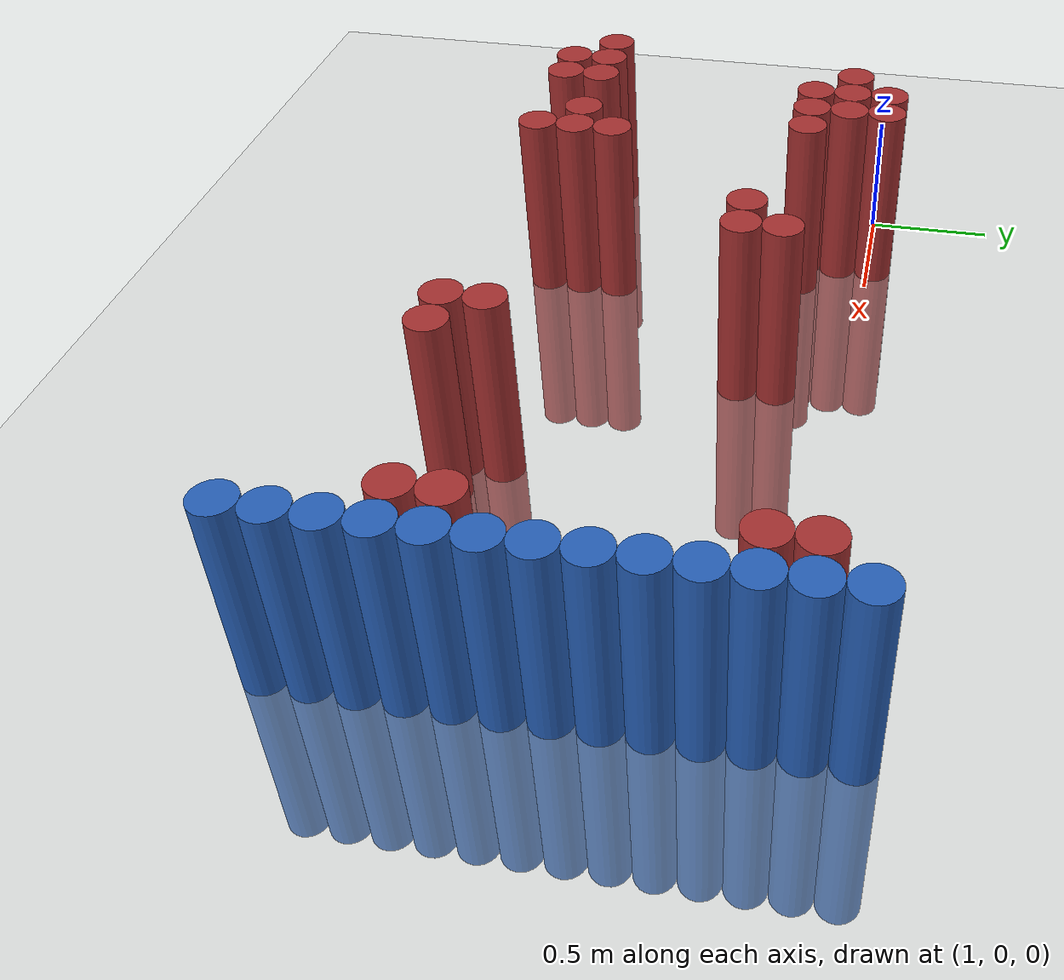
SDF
<sdf version="1.6">
 <world name="default">
  <model name="ground_plane">
   <static>1</static>
   <link name="link">
    <collision name="collision">
     <geometry><plane><normal>0 0 1</normal><size>100 100</size></plane></geometry>
     <surface><friction><ode><mu>100</mu><mu2>50</mu2></ode></friction></surface>
    </collision>
    <visual name="visual">
     <cast_shadows>0</cast_shadows>
     <geometry><plane><normal>0 0 1</normal><size>100 100</size></plane></geometry>
     <material>
      <script><uri>file://media/materials/scripts/gazebo.material</uri><name>Gazebo/Grey</name></script>
     </material>
    </visual>
   </link>
  </model>
  <model name="unit_cylinder_92">
   <static>1</static>
   <pose>3.925000 -1.625000 0.000000 0.000000 0.000000 0.000000</pose>
   <link name="link">
    <inertial>
     <mass>1</mass>
     <inertia><ixx>0.145833</ixx><ixy>0</ixy><ixz>0</ixz><iyy>0.145833</iyy><iyz>0</iyz><izz>0.125</izz></inertia>
    </inertial>
    <collision name="collision">
     <geometry><cylinder><radius>0.075000</radius><length>1.5</length></cylinder></geometry>
    </collision>
    <visual name="visual">
     <geometry><cylinder><radius>0.075000</radius><length>1.5</length></cylinder></geometry>
     <material>
      <ambient>0.152000 0.379000 0.720000 1</ambient>
      <diffuse>0.152000 0.379000 0.720000 1</diffuse>
     </material>
     <material>
      <script><name>Gazebo/Grey</name><uri>file://media/materials/scripts/gazebo.material</uri></script>
     </material>
    </visual>
   </link>
  </model>
  <model name="unit_cylinder_94">
   <static>1</static>
   <pose>3.925000 -1.475000 0.000000 0.000000 0.000000 0.000000</pose>
   <link name="link">
    <inertial>
     <mass>1</mass>
     <inertia><ixx>0.145833</ixx><ixy>0</ixy><ixz>0</ixz><iyy>0.145833</iyy><iyz>0</iyz><izz>0.125</izz></inertia>
    </inertial>
    <collision name="collision">
     <geometry><cylinder><radius>0.075000</radius><length>1.5</length></cylinder></geometry>
    </collision>
    <visual name="visual">
     <geometry><cylinder><radius>0.075000</radius><length>1.5</length></cylinder></geometry>
     <material>
      <ambient>0.152000 0.379000 0.720000 1</ambient>
      <diffuse>0.152000 0.379000 0.720000 1</diffuse>
     </material>
     <material>
      <script><name>Gazebo/Grey</name><uri>file://media/materials/scripts/gazebo.material</uri></script>
     </material>
    </visual>
   </link>
  </model>
  <model name="unit_cylinder_96">
   <static>1</static>
   <pose>3.925000 -1.325000 0.000000 0.000000 0.000000 0.000000</pose>
   <link name="link">
    <inertial>
     <mass>1</mass>
     <inertia><ixx>0.145833</ixx><ixy>0</ixy><ixz>0</ixz><iyy>0.145833</iyy><iyz>0</iyz><izz>0.125</izz></inertia>
    </inertial>
    <collision name="collision">
     <geometry><cylinder><radius>0.075000</radius><length>1.5</length></cylinder></geometry>
    </collision>
    <visual name="visual">
     <geometry><cylinder><radius>0.075000</radius><length>1.5</length></cylinder></geometry>
     <material>
      <ambient>0.152000 0.379000 0.720000 1</ambient>
      <diffuse>0.152000 0.379000 0.720000 1</diffuse>
     </material>
     <material>
      <script><name>Gazebo/Grey</name><uri>file://media/materials/scripts/gazebo.material</uri></script>
     </material>
    </visual>
   </link>
  </model>
  <model name="unit_cylinder_98">
   <static>1</static>
   <pose>3.925000 -1.175000 0.000000 0.000000 0.000000 0.000000</pose>
   <link name="link">
    <inertial>
     <mass>1</mass>
     <inertia><ixx>0.145833</ixx><ixy>0</ixy><ixz>0</ixz><iyy>0.145833</iyy><iyz>0</iyz><izz>0.125</izz></inertia>
    </inertial>
    <collision name="collision">
     <geometry><cylinder><radius>0.075000</radius><length>1.5</length></cylinder></geometry>
    </collision>
    <visual name="visual">
     <geometry><cylinder><radius>0.075000</radius><length>1.5</length></cylinder></geometry>
     <material>
      <ambient>0.152000 0.379000 0.720000 1</ambient>
      <diffuse>0.152000 0.379000 0.720000 1</diffuse>
     </material>
     <material>
      <script><name>Gazebo/Grey</name><uri>file://media/materials/scripts/gazebo.material</uri></script>
     </material>
    </visual>
   </link>
  </model>
  <model name="unit_cylinder_100">
   <static>1</static>
   <pose>3.925000 -1.025000 0.000000 0.000000 0.000000 0.000000</pose>
   <link name="link">
    <inertial>
     <mass>1</mass>
     <inertia><ixx>0.145833</ixx><ixy>0</ixy><ixz>0</ixz><iyy>0.145833</iyy><iyz>0</iyz><izz>0.125</izz></inertia>
    </inertial>
    <collision name="collision">
     <geometry><cylinder><radius>0.075000</radius><length>1.5</length></cylinder></geometry>
    </collision>
    <visual name="visual">
     <geometry><cylinder><radius>0.075000</radius><length>1.5</length></cylinder></geometry>
     <material>
      <ambient>0.152000 0.379000 0.720000 1</ambient>
      <diffuse>0.152000 0.379000 0.720000 1</diffuse>
     </material>
     <material>
      <script><name>Gazebo/Grey</name><uri>file://media/materials/scripts/gazebo.material</uri></script>
     </material>
    </visual>
   </link>
  </model>
  <model name="unit_cylinder_102">
   <static>1</static>
   <pose>3.925000 -0.875000 0.000000 0.000000 0.000000 0.000000</pose>
   <link name="link">
    <inertial>
     <mass>1</mass>
     <inertia><ixx>0.145833</ixx><ixy>0</ixy><ixz>0</ixz><iyy>0.145833</iyy><iyz>0</iyz><izz>0.125</izz></inertia>
    </inertial>
    <collision name="collision">
     <geometry><cylinder><radius>0.075000</radius><length>1.5</length></cylinder></geometry>
    </collision>
    <visual name="visual">
     <geometry><cylinder><radius>0.075000</radius><length>1.5</length></cylinder></geometry>
     <material>
      <ambient>0.152000 0.379000 0.720000 1</ambient>
      <diffuse>0.152000 0.379000 0.720000 1</diffuse>
     </material>
     <material>
      <script><name>Gazebo/Grey</name><uri>file://media/materials/scripts/gazebo.material</uri></script>
     </material>
    </visual>
   </link>
  </model>
  <model name="unit_cylinder_104">
   <static>1</static>
   <pose>3.925000 -0.725000 0.000000 0.000000 0.000000 0.000000</pose>
   <link name="link">
    <inertial>
     <mass>1</mass>
     <inertia><ixx>0.145833</ixx><ixy>0</ixy><ixz>0</ixz><iyy>0.145833</iyy><iyz>0</iyz><izz>0.125</izz></inertia>
    </inertial>
    <collision name="collision">
     <geometry><cylinder><radius>0.075000</radius><length>1.5</length></cylinder></geometry>
    </collision>
    <visual name="visual">
     <geometry><cylinder><radius>0.075000</radius><length>1.5</length></cylinder></geometry>
     <material>
      <ambient>0.152000 0.379000 0.720000 1</ambient>
      <diffuse>0.152000 0.379000 0.720000 1</diffuse>
     </material>
     <material>
      <script><name>Gazebo/Grey</name><uri>file://media/materials/scripts/gazebo.material</uri></script>
     </material>
    </visual>
   </link>
  </model>
  <model name="unit_cylinder_106">
   <static>1</static>
   <pose>3.925000 -0.575000 0.000000 0.000000 0.000000 0.000000</pose>
   <link name="link">
    <inertial>
     <mass>1</mass>
     <inertia><ixx>0.145833</ixx><ixy>0</ixy><ixz>0</ixz><iyy>0.145833</iyy><iyz>0</iyz><izz>0.125</izz></inertia>
    </inertial>
    <collision name="collision">
     <geometry><cylinder><radius>0.075000</radius><length>1.5</length></cylinder></geometry>
    </collision>
    <visual name="visual">
     <geometry><cylinder><radius>0.075000</radius><length>1.5</length></cylinder></geometry>
     <material>
      <ambient>0.152000 0.379000 0.720000 1</ambient>
      <diffuse>0.152000 0.379000 0.720000 1</diffuse>
     </material>
     <material>
      <script><name>Gazebo/Grey</name><uri>file://media/materials/scripts/gazebo.material</uri></script>
     </material>
    </visual>
   </link>
  </model>
  <model name="unit_cylinder_108">
   <static>1</static>
   <pose>3.925000 -0.425000 0.000000 0.000000 0.000000 0.000000</pose>
   <link name="link">
    <inertial>
     <mass>1</mass>
     <inertia><ixx>0.145833</ixx><ixy>0</ixy><ixz>0</ixz><iyy>0.145833</iyy><iyz>0</iyz><izz>0.125</izz></inertia>
    </inertial>
    <collision name="collision">
     <geometry><cylinder><radius>0.075000</radius><length>1.5</length></cylinder></geometry>
    </collision>
    <visual name="visual">
     <geometry><cylinder><radius>0.075000</radius><length>1.5</length></cylinder></geometry>
     <material>
      <ambient>0.152000 0.379000 0.720000 1</ambient>
      <diffuse>0.152000 0.379000 0.720000 1</diffuse>
     </material>
     <material>
      <script><name>Gazebo/Grey</name><uri>file://media/materials/scripts/gazebo.material</uri></script>
     </material>
    </visual>
   </link>
  </model>
  <model name="unit_cylinder_110">
   <static>1</static>
   <pose>3.925000 -0.275000 0.000000 0.000000 0.000000 0.000000</pose>
   <link name="link">
    <inertial>
     <mass>1</mass>
     <inertia><ixx>0.145833</ixx><ixy>0</ixy><ixz>0</ixz><iyy>0.145833</iyy><iyz>0</iyz><izz>0.125</izz></inertia>
    </inertial>
    <collision name="collision">
     <geometry><cylinder><radius>0.075000</radius><length>1.5</length></cylinder></geometry>
    </collision>
    <visual name="visual">
     <geometry><cylinder><radius>0.075000</radius><length>1.5</length></cylinder></geometry>
     <material>
      <ambient>0.152000 0.379000 0.720000 1</ambient>
      <diffuse>0.152000 0.379000 0.720000 1</diffuse>
     </material>
     <material>
      <script><name>Gazebo/Grey</name><uri>file://media/materials/scripts/gazebo.material</uri></script>
     </material>
    </visual>
   </link>
  </model>
  <model name="unit_cylinder_112">
   <static>1</static>
   <pose>3.925000 -0.125000 0.000000 0.000000 0.000000 0.000000</pose>
   <link name="link">
    <inertial>
     <mass>1</mass>
     <inertia><ixx>0.145833</ixx><ixy>0</ixy><ixz>0</ixz><iyy>0.145833</iyy><iyz>0</iyz><izz>0.125</izz></inertia>
    </inertial>
    <collision name="collision">
     <geometry><cylinder><radius>0.075000</radius><length>1.5</length></cylinder></geometry>
    </collision>
    <visual name="visual">
     <geometry><cylinder><radius>0.075000</radius><length>1.5</length></cylinder></geometry>
     <material>
      <ambient>0.152000 0.379000 0.720000 1</ambient>
      <diffuse>0.152000 0.379000 0.720000 1</diffuse>
     </material>
     <material>
      <script><name>Gazebo/Grey</name><uri>file://media/materials/scripts/gazebo.material</uri></script>
     </material>
    </visual>
   </link>
  </model>
  <model name="unit_cylinder_114">
   <static>1</static>
   <pose>3.925000 0.025000 0.000000 0.000000 0.000000 0.000000</pose>
   <link name="link">
    <inertial>
     <mass>1</mass>
     <inertia><ixx>0.145833</ixx><ixy>0</ixy><ixz>0</ixz><iyy>0.145833</iyy><iyz>0</iyz><izz>0.125</izz></inertia>
    </inertial>
    <collision name="collision">
     <geometry><cylinder><radius>0.075000</radius><length>1.5</length></cylinder></geometry>
    </collision>
    <visual name="visual">
     <geometry><cylinder><radius>0.075000</radius><length>1.5</length></cylinder></geometry>
     <material>
      <ambient>0.152000 0.379000 0.720000 1</ambient>
      <diffuse>0.152000 0.379000 0.720000 1</diffuse>
     </material>
     <material>
      <script><name>Gazebo/Grey</name><uri>file://media/materials/scripts/gazebo.material</uri></script>
     </material>
    </visual>
   </link>
  </model>
  <model name="unit_cylinder_116">
   <static>1</static>
   <pose>3.925000 0.175000 0.000000 0.000000 0.000000 0.000000</pose>
   <link name="link">
    <inertial>
     <mass>1</mass>
     <inertia><ixx>0.145833</ixx><ixy>0</ixy><ixz>0</ixz><iyy>0.145833</iyy><iyz>0</iyz><izz>0.125</izz></inertia>
    </inertial>
    <collision name="collision">
     <geometry><cylinder><radius>0.075000</radius><length>1.5</length></cylinder></geometry>
    </collision>
    <visual name="visual">
     <geometry><cylinder><radius>0.075000</radius><length>1.5</length></cylinder></geometry>
     <material>
      <ambient>0.152000 0.379000 0.720000 1</ambient>
      <diffuse>0.152000 0.379000 0.720000 1</diffuse>
     </material>
     <material>
      <script><name>Gazebo/Grey</name><uri>file://media/materials/scripts/gazebo.material</uri></script>
     </material>
    </visual>
   </link>
  </model>
  <model name="unit_cylinder_348">
   <static>1</static>
   <pose>0.925000 -1.175000 0.000000 0.000000 0.000000 0.000000</pose>
   <link name="link">
    <inertial>
     <mass>1</mass>
     <inertia><ixx>0.145833</ixx><ixy>0</ixy><ixz>0</ixz><iyy>0.145833</iyy><iyz>0</iyz><izz>0.125</izz></inertia>
    </inertial>
    <collision name="collision">
     <geometry><cylinder><radius>0.075000</radius><length>1.5</length></cylinder></geometry>
    </collision>
    <visual name="visual">
     <geometry><cylinder><radius>0.075000</radius><length>1.5</length></cylinder></geometry>
     <material>
      <ambient>0.648000 0.192000 0.192000 1</ambient>
      <diffuse>0.648000 0.192000 0.192000 1</diffuse>
     </material>
     <material>
      <script><name>Gazebo/Grey</name><uri>file://media/materials/scripts/gazebo.material</uri></script>
     </material>
    </visual>
   </link>
  </model>
  <model name="unit_cylinder_349">
   <static>1</static>
   <pose>1.075000 -1.325000 0.000000 0.000000 0.000000 0.000000</pose>
   <link name="link">
    <inertial>
     <mass>1</mass>
     <inertia><ixx>0.145833</ixx><ixy>0</ixy><ixz>0</ixz><iyy>0.145833</iyy><iyz>0</iyz><izz>0.125</izz></inertia>
    </inertial>
    <collision name="collision">
     <geometry><cylinder><radius>0.075000</radius><length>1.5</length></cylinder></geometry>
    </collision>
    <visual name="visual">
     <geometry><cylinder><radius>0.075000</radius><length>1.5</length></cylinder></geometry>
     <material>
      <ambient>0.648000 0.192000 0.192000 1</ambient>
      <diffuse>0.648000 0.192000 0.192000 1</diffuse>
     </material>
     <material>
      <script><name>Gazebo/Grey</name><uri>file://media/materials/scripts/gazebo.material</uri></script>
     </material>
    </visual>
   </link>
  </model>
  <model name="unit_cylinder_350">
   <static>1</static>
   <pose>1.075000 -1.175000 0.000000 0.000000 0.000000 0.000000</pose>
   <link name="link">
    <inertial>
     <mass>1</mass>
     <inertia><ixx>0.145833</ixx><ixy>0</ixy><ixz>0</ixz><iyy>0.145833</iyy><iyz>0</iyz><izz>0.125</izz></inertia>
    </inertial>
    <collision name="collision">
     <geometry><cylinder><radius>0.075000</radius><length>1.5</length></cylinder></geometry>
    </collision>
    <visual name="visual">
     <geometry><cylinder><radius>0.075000</radius><length>1.5</length></cylinder></geometry>
     <material>
      <ambient>0.648000 0.192000 0.192000 1</ambient>
      <diffuse>0.648000 0.192000 0.192000 1</diffuse>
     </material>
     <material>
      <script><name>Gazebo/Grey</name><uri>file://media/materials/scripts/gazebo.material</uri></script>
     </material>
    </visual>
   </link>
  </model>
  <model name="unit_cylinder_351">
   <static>1</static>
   <pose>1.075000 -0.125000 0.000000 0.000000 0.000000 0.000000</pose>
   <link name="link">
    <inertial>
     <mass>1</mass>
     <inertia><ixx>0.145833</ixx><ixy>0</ixy><ixz>0</ixz><iyy>0.145833</iyy><iyz>0</iyz><izz>0.125</izz></inertia>
    </inertial>
    <collision name="collision">
     <geometry><cylinder><radius>0.075000</radius><length>1.5</length></cylinder></geometry>
    </collision>
    <visual name="visual">
     <geometry><cylinder><radius>0.075000</radius><length>1.5</length></cylinder></geometry>
     <material>
      <ambient>0.648000 0.192000 0.192000 1</ambient>
      <diffuse>0.648000 0.192000 0.192000 1</diffuse>
     </material>
     <material>
      <script><name>Gazebo/Grey</name><uri>file://media/materials/scripts/gazebo.material</uri></script>
     </material>
    </visual>
   </link>
  </model>
  <model name="unit_cylinder_352">
   <static>1</static>
   <pose>1.225000 -1.325000 0.000000 0.000000 0.000000 0.000000</pose>
   <link name="link">
    <inertial>
     <mass>1</mass>
     <inertia><ixx>0.145833</ixx><ixy>0</ixy><ixz>0</ixz><iyy>0.145833</iyy><iyz>0</iyz><izz>0.125</izz></inertia>
    </inertial>
    <collision name="collision">
     <geometry><cylinder><radius>0.075000</radius><length>1.5</length></cylinder></geometry>
    </collision>
    <visual name="visual">
     <geometry><cylinder><radius>0.075000</radius><length>1.5</length></cylinder></geometry>
     <material>
      <ambient>0.648000 0.192000 0.192000 1</ambient>
      <diffuse>0.648000 0.192000 0.192000 1</diffuse>
     </material>
     <material>
      <script><name>Gazebo/Grey</name><uri>file://media/materials/scripts/gazebo.material</uri></script>
     </material>
    </visual>
   </link>
  </model>
  <model name="unit_cylinder_353">
   <static>1</static>
   <pose>1.225000 -1.175000 0.000000 0.000000 0.000000 0.000000</pose>
   <link name="link">
    <inertial>
     <mass>1</mass>
     <inertia><ixx>0.145833</ixx><ixy>0</ixy><ixz>0</ixz><iyy>0.145833</iyy><iyz>0</iyz><izz>0.125</izz></inertia>
    </inertial>
    <collision name="collision">
     <geometry><cylinder><radius>0.075000</radius><length>1.5</length></cylinder></geometry>
    </collision>
    <visual name="visual">
     <geometry><cylinder><radius>0.075000</radius><length>1.5</length></cylinder></geometry>
     <material>
      <ambient>0.648000 0.192000 0.192000 1</ambient>
      <diffuse>0.648000 0.192000 0.192000 1</diffuse>
     </material>
     <material>
      <script><name>Gazebo/Grey</name><uri>file://media/materials/scripts/gazebo.material</uri></script>
     </material>
    </visual>
   </link>
  </model>
  <model name="unit_cylinder_354">
   <static>1</static>
   <pose>1.225000 -0.275000 0.000000 0.000000 0.000000 0.000000</pose>
   <link name="link">
    <inertial>
     <mass>1</mass>
     <inertia><ixx>0.145833</ixx><ixy>0</ixy><ixz>0</ixz><iyy>0.145833</iyy><iyz>0</iyz><izz>0.125</izz></inertia>
    </inertial>
    <collision name="collision">
     <geometry><cylinder><radius>0.075000</radius><length>1.5</length></cylinder></geometry>
    </collision>
    <visual name="visual">
     <geometry><cylinder><radius>0.075000</radius><length>1.5</length></cylinder></geometry>
     <material>
      <ambient>0.648000 0.192000 0.192000 1</ambient>
      <diffuse>0.648000 0.192000 0.192000 1</diffuse>
     </material>
     <material>
      <script><name>Gazebo/Grey</name><uri>file://media/materials/scripts/gazebo.material</uri></script>
     </material>
    </visual>
   </link>
  </model>
  <model name="unit_cylinder_355">
   <static>1</static>
   <pose>1.225000 -0.125000 0.000000 0.000000 0.000000 0.000000</pose>
   <link name="link">
    <inertial>
     <mass>1</mass>
     <inertia><ixx>0.145833</ixx><ixy>0</ixy><ixz>0</ixz><iyy>0.145833</iyy><iyz>0</iyz><izz>0.125</izz></inertia>
    </inertial>
    <collision name="collision">
     <geometry><cylinder><radius>0.075000</radius><length>1.5</length></cylinder></geometry>
    </collision>
    <visual name="visual">
     <geometry><cylinder><radius>0.075000</radius><length>1.5</length></cylinder></geometry>
     <material>
      <ambient>0.648000 0.192000 0.192000 1</ambient>
      <diffuse>0.648000 0.192000 0.192000 1</diffuse>
     </material>
     <material>
      <script><name>Gazebo/Grey</name><uri>file://media/materials/scripts/gazebo.material</uri></script>
     </material>
    </visual>
   </link>
  </model>
  <model name="unit_cylinder_356">
   <static>1</static>
   <pose>1.225000 0.025000 0.000000 0.000000 0.000000 0.000000</pose>
   <link name="link">
    <inertial>
     <mass>1</mass>
     <inertia><ixx>0.145833</ixx><ixy>0</ixy><ixz>0</ixz><iyy>0.145833</iyy><iyz>0</iyz><izz>0.125</izz></inertia>
    </inertial>
    <collision name="collision">
     <geometry><cylinder><radius>0.075000</radius><length>1.5</length></cylinder></geometry>
    </collision>
    <visual name="visual">
     <geometry><cylinder><radius>0.075000</radius><length>1.5</length></cylinder></geometry>
     <material>
      <ambient>0.648000 0.192000 0.192000 1</ambient>
      <diffuse>0.648000 0.192000 0.192000 1</diffuse>
     </material>
     <material>
      <script><name>Gazebo/Grey</name><uri>file://media/materials/scripts/gazebo.material</uri></script>
     </material>
    </visual>
   </link>
  </model>
  <model name="unit_cylinder_357">
   <static>1</static>
   <pose>1.375000 -0.275000 0.000000 0.000000 0.000000 0.000000</pose>
   <link name="link">
    <inertial>
     <mass>1</mass>
     <inertia><ixx>0.145833</ixx><ixy>0</ixy><ixz>0</ixz><iyy>0.145833</iyy><iyz>0</iyz><izz>0.125</izz></inertia>
    </inertial>
    <collision name="collision">
     <geometry><cylinder><radius>0.075000</radius><length>1.5</length></cylinder></geometry>
    </collision>
    <visual name="visual">
     <geometry><cylinder><radius>0.075000</radius><length>1.5</length></cylinder></geometry>
     <material>
      <ambient>0.648000 0.192000 0.192000 1</ambient>
      <diffuse>0.648000 0.192000 0.192000 1</diffuse>
     </material>
     <material>
      <script><name>Gazebo/Grey</name><uri>file://media/materials/scripts/gazebo.material</uri></script>
     </material>
    </visual>
   </link>
  </model>
  <model name="unit_cylinder_358">
   <static>1</static>
   <pose>1.375000 -0.125000 0.000000 0.000000 0.000000 0.000000</pose>
   <link name="link">
    <inertial>
     <mass>1</mass>
     <inertia><ixx>0.145833</ixx><ixy>0</ixy><ixz>0</ixz><iyy>0.145833</iyy><iyz>0</iyz><izz>0.125</izz></inertia>
    </inertial>
    <collision name="collision">
     <geometry><cylinder><radius>0.075000</radius><length>1.5</length></cylinder></geometry>
    </collision>
    <visual name="visual">
     <geometry><cylinder><radius>0.075000</radius><length>1.5</length></cylinder></geometry>
     <material>
      <ambient>0.648000 0.192000 0.192000 1</ambient>
      <diffuse>0.648000 0.192000 0.192000 1</diffuse>
     </material>
     <material>
      <script><name>Gazebo/Grey</name><uri>file://media/materials/scripts/gazebo.material</uri></script>
     </material>
    </visual>
   </link>
  </model>
  <model name="unit_cylinder_359">
   <static>1</static>
   <pose>1.375000 0.025000 0.000000 0.000000 0.000000 0.000000</pose>
   <link name="link">
    <inertial>
     <mass>1</mass>
     <inertia><ixx>0.145833</ixx><ixy>0</ixy><ixz>0</ixz><iyy>0.145833</iyy><iyz>0</iyz><izz>0.125</izz></inertia>
    </inertial>
    <collision name="collision">
     <geometry><cylinder><radius>0.075000</radius><length>1.5</length></cylinder></geometry>
    </collision>
    <visual name="visual">
     <geometry><cylinder><radius>0.075000</radius><length>1.5</length></cylinder></geometry>
     <material>
      <ambient>0.648000 0.192000 0.192000 1</ambient>
      <diffuse>0.648000 0.192000 0.192000 1</diffuse>
     </material>
     <material>
      <script><name>Gazebo/Grey</name><uri>file://media/materials/scripts/gazebo.material</uri></script>
     </material>
    </visual>
   </link>
  </model>
  <model name="unit_cylinder_361">
   <static>1</static>
   <pose>1.525000 -1.175000 0.000000 0.000000 0.000000 0.000000</pose>
   <link name="link">
    <inertial>
     <mass>1</mass>
     <inertia><ixx>0.145833</ixx><ixy>0</ixy><ixz>0</ixz><iyy>0.145833</iyy><iyz>0</iyz><izz>0.125</izz></inertia>
    </inertial>
    <collision name="collision">
     <geometry><cylinder><radius>0.075000</radius><length>1.5</length></cylinder></geometry>
    </collision>
    <visual name="visual">
     <geometry><cylinder><radius>0.075000</radius><length>1.5</length></cylinder></geometry>
     <material>
      <ambient>0.648000 0.192000 0.192000 1</ambient>
      <diffuse>0.648000 0.192000 0.192000 1</diffuse>
     </material>
     <material>
      <script><name>Gazebo/Grey</name><uri>file://media/materials/scripts/gazebo.material</uri></script>
     </material>
    </visual>
   </link>
  </model>
  <model name="unit_cylinder_362">
   <static>1</static>
   <pose>1.525000 -0.275000 0.000000 0.000000 0.000000 0.000000</pose>
   <link name="link">
    <inertial>
     <mass>1</mass>
     <inertia><ixx>0.145833</ixx><ixy>0</ixy><ixz>0</ixz><iyy>0.145833</iyy><iyz>0</iyz><izz>0.125</izz></inertia>
    </inertial>
    <collision name="collision">
     <geometry><cylinder><radius>0.075000</radius><length>1.5</length></cylinder></geometry>
    </collision>
    <visual name="visual">
     <geometry><cylinder><radius>0.075000</radius><length>1.5</length></cylinder></geometry>
     <material>
      <ambient>0.648000 0.192000 0.192000 1</ambient>
      <diffuse>0.648000 0.192000 0.192000 1</diffuse>
     </material>
     <material>
      <script><name>Gazebo/Grey</name><uri>file://media/materials/scripts/gazebo.material</uri></script>
     </material>
    </visual>
   </link>
  </model>
  <model name="unit_cylinder_365">
   <static>1</static>
   <pose>1.675000 -1.325000 0.000000 0.000000 0.000000 0.000000</pose>
   <link name="link">
    <inertial>
     <mass>1</mass>
     <inertia><ixx>0.145833</ixx><ixy>0</ixy><ixz>0</ixz><iyy>0.145833</iyy><iyz>0</iyz><izz>0.125</izz></inertia>
    </inertial>
    <collision name="collision">
     <geometry><cylinder><radius>0.075000</radius><length>1.5</length></cylinder></geometry>
    </collision>
    <visual name="visual">
     <geometry><cylinder><radius>0.075000</radius><length>1.5</length></cylinder></geometry>
     <material>
      <ambient>0.648000 0.192000 0.192000 1</ambient>
      <diffuse>0.648000 0.192000 0.192000 1</diffuse>
     </material>
     <material>
      <script><name>Gazebo/Grey</name><uri>file://media/materials/scripts/gazebo.material</uri></script>
     </material>
    </visual>
   </link>
  </model>
  <model name="unit_cylinder_366">
   <static>1</static>
   <pose>1.675000 -1.175000 0.000000 0.000000 0.000000 0.000000</pose>
   <link name="link">
    <inertial>
     <mass>1</mass>
     <inertia><ixx>0.145833</ixx><ixy>0</ixy><ixz>0</ixz><iyy>0.145833</iyy><iyz>0</iyz><izz>0.125</izz></inertia>
    </inertial>
    <collision name="collision">
     <geometry><cylinder><radius>0.075000</radius><length>1.5</length></cylinder></geometry>
    </collision>
    <visual name="visual">
     <geometry><cylinder><radius>0.075000</radius><length>1.5</length></cylinder></geometry>
     <material>
      <ambient>0.648000 0.192000 0.192000 1</ambient>
      <diffuse>0.648000 0.192000 0.192000 1</diffuse>
     </material>
     <material>
      <script><name>Gazebo/Grey</name><uri>file://media/materials/scripts/gazebo.material</uri></script>
     </material>
    </visual>
   </link>
  </model>
  <model name="unit_cylinder_367">
   <static>1</static>
   <pose>1.675000 -1.025000 0.000000 0.000000 0.000000 0.000000</pose>
   <link name="link">
    <inertial>
     <mass>1</mass>
     <inertia><ixx>0.145833</ixx><ixy>0</ixy><ixz>0</ixz><iyy>0.145833</iyy><iyz>0</iyz><izz>0.125</izz></inertia>
    </inertial>
    <collision name="collision">
     <geometry><cylinder><radius>0.075000</radius><length>1.5</length></cylinder></geometry>
    </collision>
    <visual name="visual">
     <geometry><cylinder><radius>0.075000</radius><length>1.5</length></cylinder></geometry>
     <material>
      <ambient>0.648000 0.192000 0.192000 1</ambient>
      <diffuse>0.648000 0.192000 0.192000 1</diffuse>
     </material>
     <material>
      <script><name>Gazebo/Grey</name><uri>file://media/materials/scripts/gazebo.material</uri></script>
     </material>
    </visual>
   </link>
  </model>
  <model name="unit_cylinder_376">
   <static>1</static>
   <pose>2.125000 -0.425000 0.000000 0.000000 0.000000 0.000000</pose>
   <link name="link">
    <inertial>
     <mass>1</mass>
     <inertia><ixx>0.145833</ixx><ixy>0</ixy><ixz>0</ixz><iyy>0.145833</iyy><iyz>0</iyz><izz>0.125</izz></inertia>
    </inertial>
    <collision name="collision">
     <geometry><cylinder><radius>0.075000</radius><length>1.5</length></cylinder></geometry>
    </collision>
    <visual name="visual">
     <geometry><cylinder><radius>0.075000</radius><length>1.5</length></cylinder></geometry>
     <material>
      <ambient>0.648000 0.192000 0.192000 1</ambient>
      <diffuse>0.648000 0.192000 0.192000 1</diffuse>
     </material>
     <material>
      <script><name>Gazebo/Grey</name><uri>file://media/materials/scripts/gazebo.material</uri></script>
     </material>
    </visual>
   </link>
  </model>
  <model name="unit_cylinder_377">
   <static>1</static>
   <pose>2.275000 -0.425000 0.000000 0.000000 0.000000 0.000000</pose>
   <link name="link">
    <inertial>
     <mass>1</mass>
     <inertia><ixx>0.145833</ixx><ixy>0</ixy><ixz>0</ixz><iyy>0.145833</iyy><iyz>0</iyz><izz>0.125</izz></inertia>
    </inertial>
    <collision name="collision">
     <geometry><cylinder><radius>0.075000</radius><length>1.5</length></cylinder></geometry>
    </collision>
    <visual name="visual">
     <geometry><cylinder><radius>0.075000</radius><length>1.5</length></cylinder></geometry>
     <material>
      <ambient>0.648000 0.192000 0.192000 1</ambient>
      <diffuse>0.648000 0.192000 0.192000 1</diffuse>
     </material>
     <material>
      <script><name>Gazebo/Grey</name><uri>file://media/materials/scripts/gazebo.material</uri></script>
     </material>
    </visual>
   </link>
  </model>
  <model name="unit_cylinder_378">
   <static>1</static>
   <pose>2.275000 -0.275000 0.000000 0.000000 0.000000 0.000000</pose>
   <link name="link">
    <inertial>
     <mass>1</mass>
     <inertia><ixx>0.145833</ixx><ixy>0</ixy><ixz>0</ixz><iyy>0.145833</iyy><iyz>0</iyz><izz>0.125</izz></inertia>
    </inertial>
    <collision name="collision">
     <geometry><cylinder><radius>0.075000</radius><length>1.5</length></cylinder></geometry>
    </collision>
    <visual name="visual">
     <geometry><cylinder><radius>0.075000</radius><length>1.5</length></cylinder></geometry>
     <material>
      <ambient>0.648000 0.192000 0.192000 1</ambient>
      <diffuse>0.648000 0.192000 0.192000 1</diffuse>
     </material>
     <material>
      <script><name>Gazebo/Grey</name><uri>file://media/materials/scripts/gazebo.material</uri></script>
     </material>
    </visual>
   </link>
  </model>
  <model name="unit_cylinder_389">
   <static>1</static>
   <pose>2.875000 -1.325000 0.000000 0.000000 0.000000 0.000000</pose>
   <link name="link">
    <inertial>
     <mass>1</mass>
     <inertia><ixx>0.145833</ixx><ixy>0</ixy><ixz>0</ixz><iyy>0.145833</iyy><iyz>0</iyz><izz>0.125</izz></inertia>
    </inertial>
    <collision name="collision">
     <geometry><cylinder><radius>0.075000</radius><length>1.5</length></cylinder></geometry>
    </collision>
    <visual name="visual">
     <geometry><cylinder><radius>0.075000</radius><length>1.5</length></cylinder></geometry>
     <material>
      <ambient>0.648000 0.192000 0.192000 1</ambient>
      <diffuse>0.648000 0.192000 0.192000 1</diffuse>
     </material>
     <material>
      <script><name>Gazebo/Grey</name><uri>file://media/materials/scripts/gazebo.material</uri></script>
     </material>
    </visual>
   </link>
  </model>
  <model name="unit_cylinder_390">
   <static>1</static>
   <pose>2.875000 -1.175000 0.000000 0.000000 0.000000 0.000000</pose>
   <link name="link">
    <inertial>
     <mass>1</mass>
     <inertia><ixx>0.145833</ixx><ixy>0</ixy><ixz>0</ixz><iyy>0.145833</iyy><iyz>0</iyz><izz>0.125</izz></inertia>
    </inertial>
    <collision name="collision">
     <geometry><cylinder><radius>0.075000</radius><length>1.5</length></cylinder></geometry>
    </collision>
    <visual name="visual">
     <geometry><cylinder><radius>0.075000</radius><length>1.5</length></cylinder></geometry>
     <material>
      <ambient>0.648000 0.192000 0.192000 1</ambient>
      <diffuse>0.648000 0.192000 0.192000 1</diffuse>
     </material>
     <material>
      <script><name>Gazebo/Grey</name><uri>file://media/materials/scripts/gazebo.material</uri></script>
     </material>
    </visual>
   </link>
  </model>
  <model name="unit_cylinder_394">
   <static>1</static>
   <pose>3.025000 -1.325000 0.000000 0.000000 0.000000 0.000000</pose>
   <link name="link">
    <inertial>
     <mass>1</mass>
     <inertia><ixx>0.145833</ixx><ixy>0</ixy><ixz>0</ixz><iyy>0.145833</iyy><iyz>0</iyz><izz>0.125</izz></inertia>
    </inertial>
    <collision name="collision">
     <geometry><cylinder><radius>0.075000</radius><length>1.5</length></cylinder></geometry>
    </collision>
    <visual name="visual">
     <geometry><cylinder><radius>0.075000</radius><length>1.5</length></cylinder></geometry>
     <material>
      <ambient>0.648000 0.192000 0.192000 1</ambient>
      <diffuse>0.648000 0.192000 0.192000 1</diffuse>
     </material>
     <material>
      <script><name>Gazebo/Grey</name><uri>file://media/materials/scripts/gazebo.material</uri></script>
     </material>
    </visual>
   </link>
  </model>
  <model name="unit_cylinder_407">
   <static>1</static>
   <pose>3.775000 -1.175000 0.000000 0.000000 0.000000 0.000000</pose>
   <link name="link">
    <inertial>
     <mass>1</mass>
     <inertia><ixx>0.145833</ixx><ixy>0</ixy><ixz>0</ixz><iyy>0.145833</iyy><iyz>0</iyz><izz>0.125</izz></inertia>
    </inertial>
    <collision name="collision">
     <geometry><cylinder><radius>0.075000</radius><length>1.5</length></cylinder></geometry>
    </collision>
    <visual name="visual">
     <geometry><cylinder><radius>0.075000</radius><length>1.5</length></cylinder></geometry>
     <material>
      <ambient>0.648000 0.192000 0.192000 1</ambient>
      <diffuse>0.648000 0.192000 0.192000 1</diffuse>
     </material>
     <material>
      <script><name>Gazebo/Grey</name><uri>file://media/materials/scripts/gazebo.material</uri></script>
     </material>
    </visual>
   </link>
  </model>
  <model name="unit_cylinder_408">
   <static>1</static>
   <pose>3.775000 -1.025000 0.000000 0.000000 0.000000 0.000000</pose>
   <link name="link">
    <inertial>
     <mass>1</mass>
     <inertia><ixx>0.145833</ixx><ixy>0</ixy><ixz>0</ixz><iyy>0.145833</iyy><iyz>0</iyz><izz>0.125</izz></inertia>
    </inertial>
    <collision name="collision">
     <geometry><cylinder><radius>0.075000</radius><length>1.5</length></cylinder></geometry>
    </collision>
    <visual name="visual">
     <geometry><cylinder><radius>0.075000</radius><length>1.5</length></cylinder></geometry>
     <material>
      <ambient>0.648000 0.192000 0.192000 1</ambient>
      <diffuse>0.648000 0.192000 0.192000 1</diffuse>
     </material>
     <material>
      <script><name>Gazebo/Grey</name><uri>file://media/materials/scripts/gazebo.material</uri></script>
     </material>
    </visual>
   </link>
  </model>
  <model name="unit_cylinder_409">
   <static>1</static>
   <pose>3.775000 -0.125000 0.000000 0.000000 0.000000 0.000000</pose>
   <link name="link">
    <inertial>
     <mass>1</mass>
     <inertia><ixx>0.145833</ixx><ixy>0</ixy><ixz>0</ixz><iyy>0.145833</iyy><iyz>0</iyz><izz>0.125</izz></inertia>
    </inertial>
    <collision name="collision">
     <geometry><cylinder><radius>0.075000</radius><length>1.5</length></cylinder></geometry>
    </collision>
    <visual name="visual">
     <geometry><cylinder><radius>0.075000</radius><length>1.5</length></cylinder></geometry>
     <material>
      <ambient>0.648000 0.192000 0.192000 1</ambient>
      <diffuse>0.648000 0.192000 0.192000 1</diffuse>
     </material>
     <material>
      <script><name>Gazebo/Grey</name><uri>file://media/materials/scripts/gazebo.material</uri></script>
     </material>
    </visual>
   </link>
  </model>
  <model name="unit_cylinder_410">
   <static>1</static>
   <pose>3.775000 0.025000 0.000000 0.000000 0.000000 0.000000</pose>
   <link name="link">
    <inertial>
     <mass>1</mass>
     <inertia><ixx>0.145833</ixx><ixy>0</ixy><ixz>0</ixz><iyy>0.145833</iyy><iyz>0</iyz><izz>0.125</izz></inertia>
    </inertial>
    <collision name="collision">
     <geometry><cylinder><radius>0.075000</radius><length>1.5</length></cylinder></geometry>
    </collision>
    <visual name="visual">
     <geometry><cylinder><radius>0.075000</radius><length>1.5</length></cylinder></geometry>
     <material>
      <ambient>0.648000 0.192000 0.192000 1</ambient>
      <diffuse>0.648000 0.192000 0.192000 1</diffuse>
     </material>
     <material>
      <script><name>Gazebo/Grey</name><uri>file://media/materials/scripts/gazebo.material</uri></script>
     </material>
    </visual>
   </link>
  </model>
  <model name="unit_cylinder_428">
   <static>1</static>
   <pose>3.925000 -1.625000 0.000000 0.000000 0.000000 0.000000</pose>
   <link name="link">
    <inertial>
     <mass>1</mass>
     <inertia><ixx>0.145833</ixx><ixy>0</ixy><ixz>0</ixz><iyy>0.145833</iyy><iyz>0</iyz><izz>0.125</izz></inertia>
    </inertial>
    <collision name="collision">
     <geometry><cylinder><radius>0.075000</radius><length>1.5</length></cylinder></geometry>
    </collision>
    <visual name="visual">
     <geometry><cylinder><radius>0.075000</radius><length>1.5</length></cylinder></geometry>
     <material>
      <ambient>0.152000 0.379000 0.720000 1</ambient>
      <diffuse>0.152000 0.379000 0.720000 1</diffuse>
     </material>
     <material>
      <script><name>Gazebo/Grey</name><uri>file://media/materials/scripts/gazebo.material</uri></script>
     </material>
    </visual>
   </link>
  </model>
  <model name="unit_cylinder_429">
   <static>1</static>
   <pose>3.925000 -1.475000 0.000000 0.000000 0.000000 0.000000</pose>
   <link name="link">
    <inertial>
     <mass>1</mass>
     <inertia><ixx>0.145833</ixx><ixy>0</ixy><ixz>0</ixz><iyy>0.145833</iyy><iyz>0</iyz><izz>0.125</izz></inertia>
    </inertial>
    <collision name="collision">
     <geometry><cylinder><radius>0.075000</radius><length>1.5</length></cylinder></geometry>
    </collision>
    <visual name="visual">
     <geometry><cylinder><radius>0.075000</radius><length>1.5</length></cylinder></geometry>
     <material>
      <ambient>0.152000 0.379000 0.720000 1</ambient>
      <diffuse>0.152000 0.379000 0.720000 1</diffuse>
     </material>
     <material>
      <script><name>Gazebo/Grey</name><uri>file://media/materials/scripts/gazebo.material</uri></script>
     </material>
    </visual>
   </link>
  </model>
  <model name="unit_cylinder_430">
   <static>1</static>
   <pose>3.925000 -1.325000 0.000000 0.000000 0.000000 0.000000</pose>
   <link name="link">
    <inertial>
     <mass>1</mass>
     <inertia><ixx>0.145833</ixx><ixy>0</ixy><ixz>0</ixz><iyy>0.145833</iyy><iyz>0</iyz><izz>0.125</izz></inertia>
    </inertial>
    <collision name="collision">
     <geometry><cylinder><radius>0.075000</radius><length>1.5</length></cylinder></geometry>
    </collision>
    <visual name="visual">
     <geometry><cylinder><radius>0.075000</radius><length>1.5</length></cylinder></geometry>
     <material>
      <ambient>0.152000 0.379000 0.720000 1</ambient>
      <diffuse>0.152000 0.379000 0.720000 1</diffuse>
     </material>
     <material>
      <script><name>Gazebo/Grey</name><uri>file://media/materials/scripts/gazebo.material</uri></script>
     </material>
    </visual>
   </link>
  </model>
  <model name="unit_cylinder_431">
   <static>1</static>
   <pose>3.925000 -1.175000 0.000000 0.000000 0.000000 0.000000</pose>
   <link name="link">
    <inertial>
     <mass>1</mass>
     <inertia><ixx>0.145833</ixx><ixy>0</ixy><ixz>0</ixz><iyy>0.145833</iyy><iyz>0</iyz><izz>0.125</izz></inertia>
    </inertial>
    <collision name="collision">
     <geometry><cylinder><radius>0.075000</radius><length>1.5</length></cylinder></geometry>
    </collision>
    <visual name="visual">
     <geometry><cylinder><radius>0.075000</radius><length>1.5</length></cylinder></geometry>
     <material>
      <ambient>0.152000 0.379000 0.720000 1</ambient>
      <diffuse>0.152000 0.379000 0.720000 1</diffuse>
     </material>
     <material>
      <script><name>Gazebo/Grey</name><uri>file://media/materials/scripts/gazebo.material</uri></script>
     </material>
    </visual>
   </link>
  </model>
  <model name="unit_cylinder_432">
   <static>1</static>
   <pose>3.925000 -1.025000 0.000000 0.000000 0.000000 0.000000</pose>
   <link name="link">
    <inertial>
     <mass>1</mass>
     <inertia><ixx>0.145833</ixx><ixy>0</ixy><ixz>0</ixz><iyy>0.145833</iyy><iyz>0</iyz><izz>0.125</izz></inertia>
    </inertial>
    <collision name="collision">
     <geometry><cylinder><radius>0.075000</radius><length>1.5</length></cylinder></geometry>
    </collision>
    <visual name="visual">
     <geometry><cylinder><radius>0.075000</radius><length>1.5</length></cylinder></geometry>
     <material>
      <ambient>0.152000 0.379000 0.720000 1</ambient>
      <diffuse>0.152000 0.379000 0.720000 1</diffuse>
     </material>
     <material>
      <script><name>Gazebo/Grey</name><uri>file://media/materials/scripts/gazebo.material</uri></script>
     </material>
    </visual>
   </link>
  </model>
  <model name="unit_cylinder_433">
   <static>1</static>
   <pose>3.925000 -0.875000 0.000000 0.000000 0.000000 0.000000</pose>
   <link name="link">
    <inertial>
     <mass>1</mass>
     <inertia><ixx>0.145833</ixx><ixy>0</ixy><ixz>0</ixz><iyy>0.145833</iyy><iyz>0</iyz><izz>0.125</izz></inertia>
    </inertial>
    <collision name="collision">
     <geometry><cylinder><radius>0.075000</radius><length>1.5</length></cylinder></geometry>
    </collision>
    <visual name="visual">
     <geometry><cylinder><radius>0.075000</radius><length>1.5</length></cylinder></geometry>
     <material>
      <ambient>0.152000 0.379000 0.720000 1</ambient>
      <diffuse>0.152000 0.379000 0.720000 1</diffuse>
     </material>
     <material>
      <script><name>Gazebo/Grey</name><uri>file://media/materials/scripts/gazebo.material</uri></script>
     </material>
    </visual>
   </link>
  </model>
  <model name="unit_cylinder_434">
   <static>1</static>
   <pose>3.925000 -0.725000 0.000000 0.000000 0.000000 0.000000</pose>
   <link name="link">
    <inertial>
     <mass>1</mass>
     <inertia><ixx>0.145833</ixx><ixy>0</ixy><ixz>0</ixz><iyy>0.145833</iyy><iyz>0</iyz><izz>0.125</izz></inertia>
    </inertial>
    <collision name="collision">
     <geometry><cylinder><radius>0.075000</radius><length>1.5</length></cylinder></geometry>
    </collision>
    <visual name="visual">
     <geometry><cylinder><radius>0.075000</radius><length>1.5</length></cylinder></geometry>
     <material>
      <ambient>0.152000 0.379000 0.720000 1</ambient>
      <diffuse>0.152000 0.379000 0.720000 1</diffuse>
     </material>
     <material>
      <script><name>Gazebo/Grey</name><uri>file://media/materials/scripts/gazebo.material</uri></script>
     </material>
    </visual>
   </link>
  </model>
  <model name="unit_cylinder_435">
   <static>1</static>
   <pose>3.925000 -0.575000 0.000000 0.000000 0.000000 0.000000</pose>
   <link name="link">
    <inertial>
     <mass>1</mass>
     <inertia><ixx>0.145833</ixx><ixy>0</ixy><ixz>0</ixz><iyy>0.145833</iyy><iyz>0</iyz><izz>0.125</izz></inertia>
    </inertial>
    <collision name="collision">
     <geometry><cylinder><radius>0.075000</radius><length>1.5</length></cylinder></geometry>
    </collision>
    <visual name="visual">
     <geometry><cylinder><radius>0.075000</radius><length>1.5</length></cylinder></geometry>
     <material>
      <ambient>0.152000 0.379000 0.720000 1</ambient>
      <diffuse>0.152000 0.379000 0.720000 1</diffuse>
     </material>
     <material>
      <script><name>Gazebo/Grey</name><uri>file://media/materials/scripts/gazebo.material</uri></script>
     </material>
    </visual>
   </link>
  </model>
  <model name="unit_cylinder_436">
   <static>1</static>
   <pose>3.925000 -0.425000 0.000000 0.000000 0.000000 0.000000</pose>
   <link name="link">
    <inertial>
     <mass>1</mass>
     <inertia><ixx>0.145833</ixx><ixy>0</ixy><ixz>0</ixz><iyy>0.145833</iyy><iyz>0</iyz><izz>0.125</izz></inertia>
    </inertial>
    <collision name="collision">
     <geometry><cylinder><radius>0.075000</radius><length>1.5</length></cylinder></geometry>
    </collision>
    <visual name="visual">
     <geometry><cylinder><radius>0.075000</radius><length>1.5</length></cylinder></geometry>
     <material>
      <ambient>0.152000 0.379000 0.720000 1</ambient>
      <diffuse>0.152000 0.379000 0.720000 1</diffuse>
     </material>
     <material>
      <script><name>Gazebo/Grey</name><uri>file://media/materials/scripts/gazebo.material</uri></script>
     </material>
    </visual>
   </link>
  </model>
  <model name="unit_cylinder_437">
   <static>1</static>
   <pose>3.925000 -0.275000 0.000000 0.000000 0.000000 0.000000</pose>
   <link name="link">
    <inertial>
     <mass>1</mass>
     <inertia><ixx>0.145833</ixx><ixy>0</ixy><ixz>0</ixz><iyy>0.145833</iyy><iyz>0</iyz><izz>0.125</izz></inertia>
    </inertial>
    <collision name="collision">
     <geometry><cylinder><radius>0.075000</radius><length>1.5</length></cylinder></geometry>
    </collision>
    <visual name="visual">
     <geometry><cylinder><radius>0.075000</radius><length>1.5</length></cylinder></geometry>
     <material>
      <ambient>0.152000 0.379000 0.720000 1</ambient>
      <diffuse>0.152000 0.379000 0.720000 1</diffuse>
     </material>
     <material>
      <script><name>Gazebo/Grey</name><uri>file://media/materials/scripts/gazebo.material</uri></script>
     </material>
    </visual>
   </link>
  </model>
  <model name="unit_cylinder_438">
   <static>1</static>
   <pose>3.925000 -0.125000 0.000000 0.000000 0.000000 0.000000</pose>
   <link name="link">
    <inertial>
     <mass>1</mass>
     <inertia><ixx>0.145833</ixx><ixy>0</ixy><ixz>0</ixz><iyy>0.145833</iyy><iyz>0</iyz><izz>0.125</izz></inertia>
    </inertial>
    <collision name="collision">
     <geometry><cylinder><radius>0.075000</radius><length>1.5</length></cylinder></geometry>
    </collision>
    <visual name="visual">
     <geometry><cylinder><radius>0.075000</radius><length>1.5</length></cylinder></geometry>
     <material>
      <ambient>0.152000 0.379000 0.720000 1</ambient>
      <diffuse>0.152000 0.379000 0.720000 1</diffuse>
     </material>
     <material>
      <script><name>Gazebo/Grey</name><uri>file://media/materials/scripts/gazebo.material</uri></script>
     </material>
    </visual>
   </link>
  </model>
  <model name="unit_cylinder_439">
   <static>1</static>
   <pose>3.925000 0.025000 0.000000 0.000000 0.000000 0.000000</pose>
   <link name="link">
    <inertial>
     <mass>1</mass>
     <inertia><ixx>0.145833</ixx><ixy>0</ixy><ixz>0</ixz><iyy>0.145833</iyy><iyz>0</iyz><izz>0.125</izz></inertia>
    </inertial>
    <collision name="collision">
     <geometry><cylinder><radius>0.075000</radius><length>1.5</length></cylinder></geometry>
    </collision>
    <visual name="visual">
     <geometry><cylinder><radius>0.075000</radius><length>1.5</length></cylinder></geometry>
     <material>
      <ambient>0.152000 0.379000 0.720000 1</ambient>
      <diffuse>0.152000 0.379000 0.720000 1</diffuse>
     </material>
     <material>
      <script><name>Gazebo/Grey</name><uri>file://media/materials/scripts/gazebo.material</uri></script>
     </material>
    </visual>
   </link>
  </model>
  <model name="unit_cylinder_440">
   <static>1</static>
   <pose>3.925000 0.175000 0.000000 0.000000 0.000000 0.000000</pose>
   <link name="link">
    <inertial>
     <mass>1</mass>
     <inertia><ixx>0.145833</ixx><ixy>0</ixy><ixz>0</ixz><iyy>0.145833</iyy><iyz>0</iyz><izz>0.125</izz></inertia>
    </inertial>
    <collision name="collision">
     <geometry><cylinder><radius>0.075000</radius><length>1.5</length></cylinder></geometry>
    </collision>
    <visual name="visual">
     <geometry><cylinder><radius>0.075000</radius><length>1.5</length></cylinder></geometry>
     <material>
      <ambient>0.152000 0.379000 0.720000 1</ambient>
      <diffuse>0.152000 0.379000 0.720000 1</diffuse>
     </material>
     <material>
      <script><name>Gazebo/Grey</name><uri>file://media/materials/scripts/gazebo.material</uri></script>
     </material>
    </visual>
   </link>
  </model>
 </world>
</sdf>
